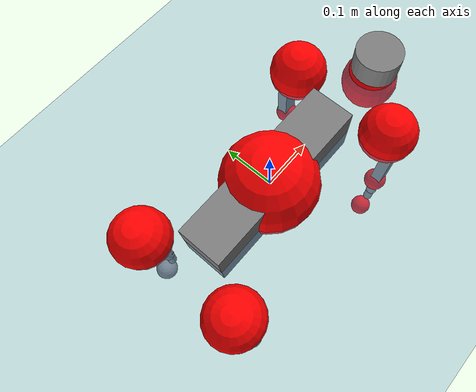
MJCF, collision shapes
<mujoco model="go2">
  <compiler angle="radian" assetdir="assets" balanceinertia="true" inertiafromgeom="false"/>

  <option timestep="0.005" density="1.2" viscosity="2e-05"/>

  <size nkey="1"/>

  <visual>
    <quality shadowsize="8192"/>
    <map shadowclip="0.5"/>
  </visual>

  <default>
    <default class="/">
      <geom contype="0" conaffinity="0" group="1" solref="-1000 -80"/>
      <site size="0.01 0.005 0.005" group="5"/>
      <general forcelimited="true" biastype="affine" gainprm="20" biasprm="0 -20 -0.5"/>
      <default class="go2">
        <joint armature="0.01" damping="0.01" frictionloss="0.2"/>
        <geom condim="1" margin="0.001"/>
        <default class="visual">
          <geom type="mesh" group="2"/>
        </default>
        <default class="collision">
          <geom group="3"/>
          <default class="foot">
            <geom size="0.022 0 0" condim="6" priority="1" friction="0.8 0.02 0.01" solimp="0.015 1 0.022"/>
          </default>
        </default>
        <default class="reward_collision_sphere">
          <geom group="5" rgba="1 0 0 1"/>
        </default>
      </default>
    </default>
  </default>

  <asset>
    <texture type="skybox" colorspace="auto" name="//unnamed_texture_0" builtin="gradient" rgb1="0.95 0.95 0.95" rgb2="0.95 0.95 0.95" width="100" height="600"/>
    <texture type="2d" colorspace="auto" name="texplane" builtin="checker" rgb1="0.345 0.575 0.748" rgb2="0.345 0.575 0.748" markrgb="1 1 1" width="512" height="512"/>
    <material name="MatPlane" class="/" texture="texplane" texuniform="true" texrepeat="2 2" specular="0.9"/>
    <material name="metal" class="/" rgba="0.9 0.95 0.95 1"/>
    <material name="black" class="/" rgba="0 0 0 1"/>
    <material name="white" class="/"/>
    <material name="gray" class="/" rgba="0.671705 0.692426 0.77427 1"/>
    <mesh name="base_0" class="/" file="base_0.obj"/>
    <mesh name="base_1" class="/" file="base_1.obj"/>
    <mesh name="base_2" class="/" file="base_2.obj"/>
    <mesh name="base_3" class="/" file="base_3.obj"/>
    <mesh name="base_4" class="/" file="base_4.obj"/>
    <mesh name="hip_0" class="/" file="hip_0.obj"/>
    <mesh name="hip_1" class="/" file="hip_1.obj"/>
    <mesh name="thigh_0" class="/" file="thigh_0.obj"/>
    <mesh name="thigh_1" class="/" file="thigh_1.obj"/>
    <mesh name="thigh_mirror_0" class="/" file="thigh_mirror_0.obj"/>
    <mesh name="thigh_mirror_1" class="/" file="thigh_mirror_1.obj"/>
    <mesh name="calf_0" class="/" file="calf_0.obj"/>
    <mesh name="calf_1" class="/" file="calf_1.obj"/>
    <mesh name="calf_mirror_0" class="/" file="calf_mirror_0.obj"/>
    <mesh name="calf_mirror_1" class="/" file="calf_mirror_1.obj"/>
    <mesh name="foot" class="/" file="foot.obj"/>
  </asset>

  <worldbody>
    <geom name="floor" class="/" size="100 100 0.125" type="plane" group="0" material="MatPlane"/>
    <light name="toplight_shadow" class="/" pos="0 0 5" dir="0.0990148 0.0990148 -0.990148" type="directional" ambient="0.04 0.04 0.04" diffuse="0.55 0.55 0.55" specular="0.12 0.12 0.12"/>
    <light name="toplight_fill" class="/" pos="0 0 5" dir="0.0990148 0.0990148 -0.990148" type="directional" castshadow="false" ambient="0.04 0.04 0.04" diffuse="0.3 0.3 0.3" specular="0.08 0.08 0.08"/>
    <body name="trunk" childclass="go2" pos="-8.71527e-05 0.000206402 0.00273431" quat="1 0.000409549 -0.000410013 -0.000160451">
      <inertial pos="0.0260704 -0.00636083 -0.00784518" quat="-0.000240043 0.713341 -0.00321053 0.700809" mass="6.04469" diaginertia="0.196061 0.0669999 0.00678976"/>
      <joint name="//unnamed_joint_0" type="free" armature="0" damping="0" frictionloss="0"/>
      <geom name="//unnamed_geom_1" class="visual" material="black" mesh="base_0"/>
      <geom name="//unnamed_geom_2" class="visual" material="black" mesh="base_1"/>
      <geom name="//unnamed_geom_3" class="visual" material="black" mesh="base_2"/>
      <geom name="//unnamed_geom_4" class="visual" material="white" mesh="base_3"/>
      <geom name="//unnamed_geom_5" class="visual" material="gray" mesh="base_4"/>
      <geom name="trunk_1" class="collision" size="0.178053 0.0442531 0.0539556" type="box"/>
      <geom name="trunk_2" class="collision" size="0.0473295 0.0425965" pos="0.325582 0 0.00776107" type="cylinder"/>
      <geom name="trunk_3" class="collision" size="0.0444897" pos="0.334721 0 -0.0465664"/>
      <geom name="//unnamed_geom_9" class="reward_collision_sphere" size="0.0946589"/>
      <geom name="//unnamed_geom_10" class="reward_collision_sphere" size="0.0567954" pos="0.31987 0 -0.0349248"/>
      <site name="imu" pos="-0.0241159 0.00475257 0.0366418" size="0.00946589"/>
      <camera name="track" pos="0 -1.84254 0" quat="0.707107 0.707107 0 0" mode="trackcom"/>
      <camera name="ego_camera" pos="0.356427 0 0.0349248" quat="-0.5 -0.5 0.5 0.5"/>
      <body name="FL_hip" pos="0.217949 0.0447216 0.0051643" quat="1 -0.000471731 0.000474187 -0.000427736">
        <inertial pos="-0.00136411 0.000563018 0.000549892" quat="0.492076 0.493644 0.507624 0.506453" mass="0.552268" diaginertia="0.00169553 0.000391895 0.000130698"/>
        <joint name="FL_hip_joint" pos="0 0 0" axis="1 0.00030082 0.000209807" stiffness="0.0049588" range="-1.05226 1.0383" armature="0.00862807" damping="0.00269484" frictionloss="0.230226"/>
        <geom name="//unnamed_geom_11" class="visual" material="metal" mesh="hip_0"/>
        <geom name="//unnamed_geom_12" class="visual" material="gray" mesh="hip_1"/>
        <geom name="//unnamed_geom_13" class="collision" size="0.0435431 0.0189318" pos="0 0.0737014 0" quat="0.707107 0.707107 0 0" type="cylinder"/>
        <geom name="//unnamed_geom_14" class="reward_collision_sphere" size="0.0567954" pos="0 0.0644888 0"/>
        <body name="FL_thigh" pos="-0.002118 0.0875217 0.000618495" quat="1 -0.000238971 0.000181265 -0.000404769">
          <inertial pos="-0.00546477 -0.0203197 -0.0245142" quat="0.828521 0.0793294 -0.015923 0.554082" mass="1.06402" diaginertia="0.0113968 0.00394114 0.000286578"/>
          <joint name="FL_thigh_joint" pos="0 0 0" axis="0.00054348 1 -0.000636763" range="-1.5309 3.49534" armature="0.0101023" damping="0.0136418" frictionloss="0.20947"/>
          <geom name="//unnamed_geom_15" class="visual" material="metal" mesh="thigh_0"/>
          <geom name="//unnamed_geom_16" class="visual" material="gray" mesh="thigh_1"/>
          <geom name="//unnamed_geom_17" class="collision" size="0.100812 0.0115957 0.016092" pos="0 0 -0.0826554" quat="0.707107 0 0.707107 0" type="box"/>
          <body name="FL_calf" pos="-0.000544204 -0.00255037 -0.168554" quat="0.999996 -0.00263119 -0.00129464 -0.000212136">
            <inertial pos="0.00538506 -0.000404293 -0.108871" quat="0.710351 0.0018669 -0.00425358 0.703832" mass="0.21049" diaginertia="0.00288538 0.00100766 1.59205e-05"/>
            <joint name="FL_calf_joint" pos="0 0 0" axis="0.00282796 0.999995 -0.00140931" stiffness="0.00843946" range="-2.68219 -0.879587" armature="0.00949606" damping="0" frictionloss="0.215482"/>
            <geom name="//unnamed_geom_18" class="visual" material="gray" mesh="calf_0"/>
            <geom name="//unnamed_geom_19" class="visual" material="black" mesh="calf_1"/>
            <geom name="FL_calf0" class="collision" size="0.0113591 0.0567954" pos="0.00913914 0 -0.0465664" quat="0.994493 0 -0.104807 0" type="cylinder"/>
            <geom name="//unnamed_geom_21" class="collision" size="0.0104125 0.0307642" pos="0.0228479 0 -0.114864" quat="0.999688 0 0.0249974 0" type="cylinder"/>
            <geom name="//unnamed_geom_22" class="visual" pos="0 0 -0.165311" quat="1 0 0 0" material="black" mesh="foot"/>
            <geom name="FL_foot" class="foot" size="0.0162667" pos="-0.00228479 0 -0.165311"/>
            <geom name="//unnamed_geom_24" class="reward_collision_sphere" size="0.0236647"/>
            <geom name="//unnamed_geom_25" class="reward_collision_sphere" size="0.0236647" pos="-0.00228479 0 -0.165311"/>
            <site name="FL_foot" class="foot" pos="-0.00228479 0 -0.165311" size="0.00946589"/>
          </body>
        </body>
      </body>
      <body name="FR_hip" pos="0.222428 -0.0418767 -0.00120417" quat="0.999998 -0.000122335 -0.00155259 -0.00118714">
        <inertial pos="-0.00520317 1.79276e-05 -0.00268683" quat="0.49859 0.505432 0.498478 0.49746" mass="0.623824" diaginertia="0.00179035 0.000423899 0.000134346"/>
        <joint name="FR_hip_joint" pos="0 0 0" axis="0.99994 -0.00375794 0.0103353" range="-1.11942 1.16299" armature="0.00909115" damping="0.0154365" frictionloss="0.207299"/>
        <geom name="//unnamed_geom_26" class="visual" pos="0 1.26458e-09 5.42404e-08" quat="4.63268e-05 1 0 0" material="metal" mesh="hip_0"/>
        <geom name="//unnamed_geom_27" class="visual" pos="0 2.05004e-09 -1.34157e-07" quat="4.63268e-05 1 0 0" material="gray" mesh="hip_1"/>
        <geom name="//unnamed_geom_28" class="collision" size="0.0435431 0.0189318" pos="0 -0.0737014 0" quat="0.707107 0.707107 0 0" type="cylinder"/>
        <geom name="//unnamed_geom_29" class="reward_collision_sphere" size="0.0567954" pos="0 -0.0644888 0"/>
        <body name="FR_thigh" pos="-0.00703823 -0.0896259 0.000565786" quat="1 0.000473101 -0.000352594 0.000403037">
          <inertial pos="-0.00210394 0.0182444 -0.0247828" quat="0.550775 -0.0195108 0.0861392 0.829968" mass="0.891328" diaginertia="0.0112654 0.00350861 0.000230535"/>
          <joint name="FR_thigh_joint" pos="0 0 0" axis="-0.0236856 -0.999458 0.0228817" stiffness="0.00184608" range="-3.64284 1.68655" armature="0.0098512" damping="0.023986" frictionloss="0.171134"/>
          <geom name="//unnamed_geom_30" class="visual" material="metal" mesh="thigh_mirror_0"/>
          <geom name="//unnamed_geom_31" class="visual" material="gray" mesh="thigh_mirror_1"/>
          <geom name="//unnamed_geom_32" class="collision" size="0.100812 0.0115957 0.016092" pos="0 0 -0.0826554" quat="0.707107 0 0.707107 0" type="box"/>
          <body name="FR_calf" pos="-0.00599872 0.00187642 -0.166037" quat="0.999999 -0.00100177 0.000383742 -0.000148333">
            <inertial pos="0.00661008 -0.00135506 -0.1167" quat="0.699369 -0.00209503 -0.00253892 0.714753" mass="0.223837" diaginertia="0.00283387 0.000953417 1.46979e-05"/>
            <joint name="FR_calf_joint" pos="0 0 0" axis="-0.0406094 -0.999165 0.00457983" range="0.868557 2.80784" armature="0.0091978" damping="0.0161359" frictionloss="0.261478"/>
            <geom name="//unnamed_geom_33" class="visual" material="gray" mesh="calf_mirror_0"/>
            <geom name="//unnamed_geom_34" class="visual" material="black" mesh="calf_mirror_1"/>
            <geom name="FR_calf0" class="collision" size="0.0123057 0.0567954" pos="0.0114239 0 -0.0465664" quat="0.995004 0 -0.0998334 0" type="cylinder"/>
            <geom name="//unnamed_geom_36" class="collision" size="0.0104125 0.0307642" pos="0.0228479 0 -0.114864" quat="0.999688 0 0.0249974 0" type="cylinder"/>
            <geom name="//unnamed_geom_37" class="visual" pos="0 0 -0.165311" quat="1 0 0 0" material="black" mesh="foot"/>
            <geom name="FR_foot" class="foot" size="0.0221102" pos="-0.00228479 0 -0.165311"/>
            <geom name="//unnamed_geom_39" class="reward_collision_sphere" size="0.0236647"/>
            <geom name="//unnamed_geom_40" class="reward_collision_sphere" size="0.0236647" pos="-0.00228479 0 -0.165311"/>
            <site name="FR_foot" class="foot" pos="-0.00228479 0 -0.165311" size="0.00946589"/>
          </body>
        </body>
      </body>
      <body name="RL_hip" pos="-0.223258 0.0396015 -0.000337091" quat="0.999999 0.000810785 0.00137663 0.000318462">
        <inertial pos="0.00656173 0.0063404 0.00237369" quat="0.495471 0.470755 0.524558 0.507679" mass="0.632429" diaginertia="0.00174474 0.000385629 0.000135115"/>
        <joint name="RL_hip_joint" pos="0 0 0" axis="-0.999921 -0.0103371 0.0072203" stiffness="0.0179893" range="-1.00781 1.05537" armature="0.00911463" damping="0.0161687" frictionloss="0.183562"/>
        <geom name="//unnamed_geom_41" class="visual" pos="-3.19093e-09 0 -6.25496e-07" quat="4.63268e-05 0 1 0" material="metal" mesh="hip_0"/>
        <geom name="//unnamed_geom_42" class="visual" pos="-5.17288e-09 0 -5.54726e-07" quat="4.63268e-05 0 1 0" material="gray" mesh="hip_1"/>
        <geom name="//unnamed_geom_43" class="collision" size="0.0435431 0.0189318" pos="0 0.0737014 0" quat="0.707107 0.707107 0 0" type="cylinder"/>
        <geom name="//unnamed_geom_44" class="reward_collision_sphere" size="0.0567954" pos="0 0.0644888 0"/>
        <body name="RL_thigh" pos="-0.00062426 0.0923146 0.000122197" quat="1 -0.000107466 0.000356741 -3.91392e-05">
          <inertial pos="-0.00522215 -0.0178936 -0.025055" quat="0.830505 0.0870135 -0.0193399 0.549832" mass="0.9496" diaginertia="0.0104235 0.00363465 0.000228092"/>
          <joint name="RL_thigh_joint" pos="0 0 0" axis="0.00440001 0.999925 0.011409" range="-0.517287 4.52188" armature="0.00956434" damping="0.00459794" frictionloss="0.184201"/>
          <geom name="//unnamed_geom_45" class="visual" material="metal" mesh="thigh_0"/>
          <geom name="//unnamed_geom_46" class="visual" material="gray" mesh="thigh_1"/>
          <geom name="//unnamed_geom_47" class="collision" size="0.100812 0.0115957 0.016092" pos="0 0 -0.0826554" quat="0.707107 0 0.707107 0" type="box"/>
          <body name="RL_calf" pos="-0.0034363 2.26984e-05 -0.165984" quat="0.999998 0.000392217 -5.93604e-05 0.00201948">
            <inertial pos="0.00365571 -0.00159817 -0.107359" quat="0.71028 0.00175655 -0.00519385 0.703898" mass="0.195385" diaginertia="0.00255872 0.000810791 1.20583e-05"/>
            <joint name="RL_calf_joint" pos="0 0 0" axis="0.00876329 0.999945 0.00581339" stiffness="0.00406458" range="-2.7092 -0.672097" armature="0.00994457" damping="0" frictionloss="0.186362"/>
            <geom name="//unnamed_geom_48" class="visual" material="gray" mesh="calf_0"/>
            <geom name="//unnamed_geom_49" class="visual" material="black" mesh="calf_1"/>
            <geom name="RL_calf0" class="collision" size="0.0123057 0.0567954" pos="0.0114239 0 -0.0465664" quat="0.995004 0 -0.0998334 0" type="cylinder"/>
            <geom name="//unnamed_geom_51" class="collision" size="0.0104125 0.0307642" pos="0.0228479 0 -0.114864" quat="0.999688 0 0.0249974 0" type="cylinder"/>
            <geom name="//unnamed_geom_52" class="visual" pos="0 0 -0.165311" quat="1 0 0 0" material="black" mesh="foot"/>
            <geom name="RL_foot" class="foot" size="0.025425" pos="-0.00228479 0 -0.165311"/>
            <geom name="//unnamed_geom_54" class="reward_collision_sphere" size="0.0236647"/>
            <geom name="//unnamed_geom_55" class="reward_collision_sphere" size="0.0236647" pos="-0.00228479 0 -0.165311"/>
            <site name="RL_foot" class="foot" pos="-0.00228479 0 -0.165311" size="0.00946589"/>
          </body>
        </body>
      </body>
      <body name="RR_hip" pos="-0.220568 -0.0460145 -0.00350266" quat="0.999997 0.00156153 -0.00185069 0.000184915">
        <inertial pos="0.00816816 -0.00201815 -0.000217208" quat="0.502252 0.501281 0.520209 0.47523" mass="0.57772" diaginertia="0.00172675 0.000407832 0.000139635"/>
        <joint name="RR_hip_joint" pos="0 0 0" axis="-0.999974 0.00564692 -0.00447614" range="-0.955547 1.08715" armature="0.0120645" damping="0.0209237" frictionloss="0.172808"/>
        <geom name="//unnamed_geom_56" class="visual" pos="3.18327e-09 1.26458e-09 -6.79736e-07" quat="2.14617e-09 4.63268e-05 4.63268e-05 -1" material="metal" mesh="hip_0"/>
        <geom name="//unnamed_geom_57" class="visual" pos="5.19181e-09 2.05004e-09 -4.20568e-07" quat="2.14617e-09 4.63268e-05 4.63268e-05 -1" material="gray" mesh="hip_1"/>
        <geom name="//unnamed_geom_58" class="collision" size="0.0435431 0.0189318" pos="0 -0.0737014 0" quat="0.707107 0.707107 0 0" type="cylinder"/>
        <geom name="//unnamed_geom_59" class="reward_collision_sphere" size="0.0567954" pos="0 -0.0644888 0"/>
        <body name="RR_thigh" pos="-0.00164872 -0.0866544 0.00641094" quat="1 -0.000410407 0.000517453 0.000464014">
          <inertial pos="-0.0044378 0.0127212 -0.0265274" quat="0.552104 -0.0178767 0.066554 0.830922" mass="1.08132" diaginertia="0.0124266 0.00420676 0.00026433"/>
          <joint name="RR_thigh_joint" pos="0 0 0" axis="0.00614608 -0.999962 0.00611222" range="-4.52993 0.641369" armature="0.00549377" damping="0.0030516" frictionloss="0.201826"/>
          <geom name="//unnamed_geom_60" class="visual" material="metal" mesh="thigh_mirror_0"/>
          <geom name="//unnamed_geom_61" class="visual" material="gray" mesh="thigh_mirror_1"/>
          <geom name="//unnamed_geom_62" class="collision" size="0.100812 0.0115957 0.016092" pos="0 0 -0.0826554" quat="0.707107 0 0.707107 0" type="box"/>
          <body name="RR_calf" pos="0.00450188 0.00380053 -0.16528" quat="0.999999 -0.000198382 0.0013456 -0.000658195">
            <inertial pos="0.0067412 -0.000363368 -0.110057" quat="0.721891 -0.0200939 0.0136936 0.691579" mass="0.220103" diaginertia="0.00299574 0.000960389 1.35744e-05"/>
            <joint name="RR_calf_joint" pos="0 0 0" axis="0.0169235 -0.999633 0.0211445" range="0.760849 2.61951" armature="0.00879426" damping="0.00246903" frictionloss="0.210583"/>
            <geom name="//unnamed_geom_63" class="visual" material="gray" mesh="calf_mirror_0"/>
            <geom name="//unnamed_geom_64" class="visual" material="black" mesh="calf_mirror_1"/>
            <geom name="RR_calf0" class="collision" size="0.0123057 0.0567954" pos="0.0114239 0 -0.0465664" quat="0.995004 0 -0.0998334 0" type="cylinder"/>
            <geom name="//unnamed_geom_66" class="collision" size="0.0104125 0.0307642" pos="0.0228479 0 -0.114864" quat="0.999688 0 0.0249974 0" type="cylinder"/>
            <geom name="//unnamed_geom_67" class="visual" pos="0 0 -0.165311" quat="1 0 0 0" material="black" mesh="foot"/>
            <geom name="RR_foot" class="foot" size="0.0266514" pos="-0.00228479 0 -0.165311"/>
            <geom name="//unnamed_geom_69" class="reward_collision_sphere" size="0.0236647"/>
            <geom name="//unnamed_geom_70" class="reward_collision_sphere" size="0.0236647" pos="-0.00228479 0 -0.165311"/>
            <site name="RR_foot" class="foot" pos="-0.00228479 0 -0.165311" size="0.00946589"/>
          </body>
        </body>
      </body>
    </body>
  </worldbody>

  <contact>
    <pair class="/" geom1="floor" geom2="FL_foot" name="//unnamed_contact_0"/>
    <pair class="/" geom1="floor" geom2="FR_foot" name="//unnamed_contact_1"/>
    <pair class="/" geom1="floor" geom2="RL_foot" name="//unnamed_contact_2"/>
    <pair class="/" geom1="floor" geom2="RR_foot" name="//unnamed_contact_3"/>
  </contact>

  <actuator>
    <general name="FL_hip" class="/" joint="FL_hip_joint" forcerange="-23.3505 23.3505" gainprm="16.0774" biasprm="0 -16.0774 -0.477666"/>
    <general name="FL_thigh" class="/" joint="FL_thigh_joint" forcerange="-28.7683 28.7683" gainprm="16.0774" biasprm="0 -16.0774 -0.477666"/>
    <general name="FL_calf" class="/" joint="FL_calf_joint" forcerange="-45.7156 45.7156" gainprm="16.0774" biasprm="0 -16.0774 -0.477666"/>
    <general name="FR_hip" class="/" joint="FR_hip_joint" forcerange="-21.2744 21.2744" gainprm="16.0774" biasprm="0 -16.0774 -0.477666"/>
    <general name="FR_thigh" class="/" joint="FR_thigh_joint" forcerange="-23.2255 23.2255" gainprm="16.0774" biasprm="0 -16.0774 -0.477666"/>
    <general name="FR_calf" class="/" joint="FR_calf_joint" forcerange="-42.9257 42.9257" gainprm="16.0774" biasprm="0 -16.0774 -0.477666"/>
    <general name="RL_hip" class="/" joint="RL_hip_joint" forcerange="-20.5931 20.5931" gainprm="16.0774" biasprm="0 -16.0774 -0.477666"/>
    <general name="RL_thigh" class="/" joint="RL_thigh_joint" forcerange="-22.5124 22.5124" gainprm="16.0774" biasprm="0 -16.0774 -0.477666"/>
    <general name="RL_calf" class="/" joint="RL_calf_joint" forcerange="-44.0839 44.0839" gainprm="16.0774" biasprm="0 -16.0774 -0.477666"/>
    <general name="RR_hip" class="/" joint="RR_hip_joint" forcerange="-28.5654 28.5654" gainprm="16.0774" biasprm="0 -16.0774 -0.477666"/>
    <general name="RR_thigh" class="/" joint="RR_thigh_joint" forcerange="-20.632 20.632" gainprm="16.0774" biasprm="0 -16.0774 -0.477666"/>
    <general name="RR_calf" class="/" joint="RR_calf_joint" forcerange="-40.1559 40.1559" gainprm="16.0774" biasprm="0 -16.0774 -0.477666"/>
  </actuator>

  <sensor>
    <gyro site="imu" name="imu_angular_velocity"/>
    <velocimeter site="imu" name="imu_linear_velocity"/>
    <framelinvel objtype="site" objname="FL_foot" name="FL_foot_global_linear_velocity"/>
    <framelinvel objtype="site" objname="FR_foot" name="FR_foot_global_linear_velocity"/>
    <framelinvel objtype="site" objname="RL_foot" name="RL_foot_global_linear_velocity"/>
    <framelinvel objtype="site" objname="RR_foot" name="RR_foot_global_linear_velocity"/>
  </sensor>

  <keyframe>
    <key name="home" qpos="0 0 0.325 1 0 0 0 0.1 0.8 -1.5 -0.1 -0.8 1.5 -0.1 0.8 -1.5 0.1 -0.8 1.5"/>
  </keyframe>
</mujoco>
